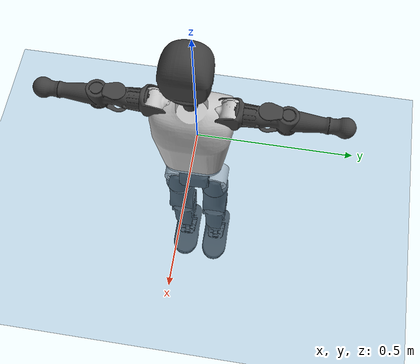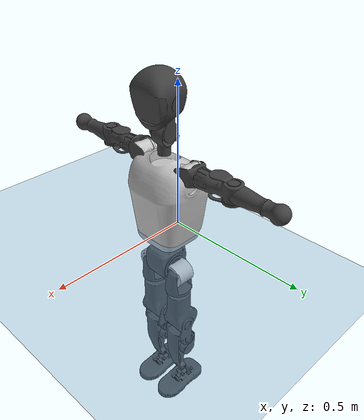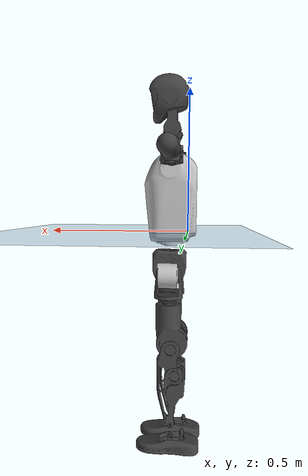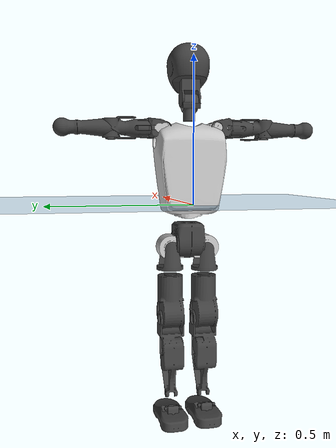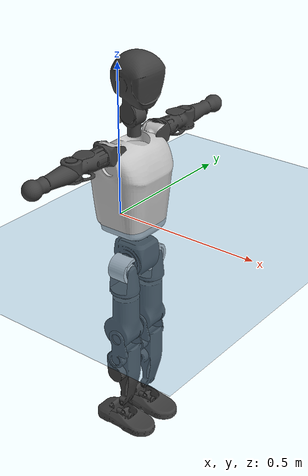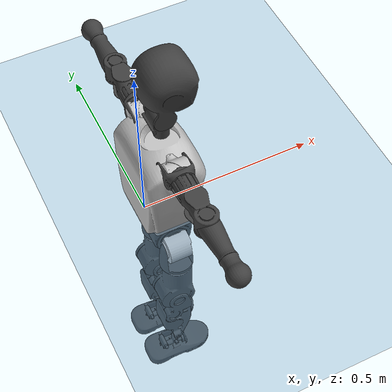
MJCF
<mujoco model="T1">
  <compiler angle="radian" assetdir="assets" balanceinertia="true" inertiafromgeom="false"/>

  <option timestep="0.005" density="1.2" viscosity="2e-05"/>

  <size nkey="1"/>

  <visual>
    <quality shadowsize="8192"/>
    <map shadowclip="0.5"/>
  </visual>

  <default>
    <default class="/">
      <joint armature="0.01" damping="0.01" frictionloss="0.1"/>
      <geom contype="0" conaffinity="0" group="1" solref="-1000 -80"/>
      <site size="0.01 0.005 0.005" group="5"/>
      <general forcelimited="true" biastype="affine" gainprm="25" biasprm="0 -25 -0.6"/>
      <default class="t1">
        <geom rgba="0.25 0.25 0.25 1"/>
        <default class="visual">
          <geom type="mesh" group="2"/>
        </default>
        <default class="collision">
          <geom group="3"/>
        </default>
        <default class="foot">
          <geom size="0.1115 0.05 0.015" type="box" condim="6" group="4" priority="1" solimp="0.015 1 0.015"/>
        </default>
        <default class="reward_collision_sphere">
          <geom group="5" rgba="1 0 0 1"/>
        </default>
      </default>
    </default>
  </default>

  <asset>
    <texture type="skybox" colorspace="auto" name="//unnamed_texture_0" builtin="gradient" rgb1="0.95 0.95 0.95" rgb2="0.95 0.95 0.95" width="100" height="600"/>
    <texture type="2d" colorspace="auto" name="texplane" builtin="checker" rgb1="0.345 0.575 0.748" rgb2="0.345 0.575 0.748" markrgb="1 1 1" width="512" height="512"/>
    <material name="MatPlane" class="/" texture="texplane" texuniform="true" texrepeat="2 2" specular="0.9"/>
    <mesh name="Trunk" class="/" file="Trunk.stl"/>
    <mesh name="H1" class="/" file="H1.stl"/>
    <mesh name="H2" class="/" file="H2.stl"/>
    <mesh name="AL1" class="/" file="AL1.stl"/>
    <mesh name="AL2" class="/" file="AL2.stl"/>
    <mesh name="AL3" class="/" file="AL3.stl"/>
    <mesh name="left_hand_link" class="/" file="left_hand_link.stl"/>
    <mesh name="AR1" class="/" file="AR1.stl"/>
    <mesh name="AR2" class="/" file="AR2.stl"/>
    <mesh name="AR3" class="/" file="AR3.stl"/>
    <mesh name="right_hand_link" class="/" file="right_hand_link.stl"/>
    <mesh name="Waist" class="/" file="Waist.stl"/>
    <mesh name="Hip_Pitch_Left" class="/" file="Hip_Pitch_Left.stl"/>
    <mesh name="Hip_Roll_Left" class="/" file="Hip_Roll_Left.stl"/>
    <mesh name="Hip_Yaw_Left" class="/" file="Hip_Yaw_Left.stl"/>
    <mesh name="Shank_Left" class="/" file="Shank_Left.stl"/>
    <mesh name="Ankle_Cross_Left" class="/" file="Ankle_Cross_Left.stl"/>
    <mesh name="left_foot_link" class="/" file="left_foot_link.stl"/>
    <mesh name="Hip_Pitch_Right" class="/" file="Hip_Pitch_Right.stl"/>
    <mesh name="Hip_Roll_Right" class="/" file="Hip_Roll_Right.stl"/>
    <mesh name="Hip_Yaw_Right" class="/" file="Hip_Yaw_Right.stl"/>
    <mesh name="Shank_Right" class="/" file="Shank_Right.stl"/>
    <mesh name="Ankle_Cross_Right" class="/" file="Ankle_Cross_Right.stl"/>
    <mesh name="right_foot_link" class="/" file="right_foot_link.stl"/>
  </asset>

  <worldbody>
    <geom name="floor" class="/" size="100 100 0.125" type="plane" group="0" material="MatPlane"/>
    <light name="toplight_shadow" class="/" pos="0 0 5" dir="0.0990148 0.0990148 -0.990148" type="directional" ambient="0.04 0.04 0.04" diffuse="0.55 0.55 0.55" specular="0.12 0.12 0.12"/>
    <light name="toplight_fill" class="/" pos="0 0 5" dir="0.0990148 0.0990148 -0.990148" type="directional" castshadow="false" ambient="0.04 0.04 0.04" diffuse="0.3 0.3 0.3" specular="0.08 0.08 0.08"/>
    <body name="trunk" childclass="t1" pos="-0.000241158 0.0020299 0.000599347" quat="1 -2.05798e-05 -6.98331e-05 2.70099e-05">
      <inertial pos="0.0514643 -0.00193665 0.124852" quat="0.999947 -0.00320557 -0.00600081 -0.00776606" mass="8.9586" diaginertia="0.0782325 0.00572588 0.122543"/>
      <joint name="//unnamed_joint_0" type="free" armature="0" damping="0" frictionloss="0"/>
      <geom name="//unnamed_geom_1" class="visual" rgba="0.76 0.76 0.76 1" mesh="Trunk"/>
      <geom name="//unnamed_geom_2" class="collision" size="0.068943 0.091924 0.137886" pos="0.0582799 0 0.142049" type="box"/>
      <geom name="//unnamed_geom_3" class="reward_collision_sphere" size="0.105713" pos="0.0582799 0 0.118374"/>
      <geom name="//unnamed_geom_4" class="reward_collision_sphere" size="0.0137886" pos="0.0582799 0.0512248 0"/>
      <geom name="//unnamed_geom_5" class="reward_collision_sphere" size="0.0137886" pos="0.0582799 -0.0512248 0"/>
      <geom name="//unnamed_geom_6" class="reward_collision_sphere" size="0.0137886" pos="0.0582799 0.064483 0.213074"/>
      <geom name="//unnamed_geom_7" class="reward_collision_sphere" size="0.0137886" pos="0.0582799 -0.064483 0.213074"/>
      <site name="imu" pos="0.000425229 -0.00293265 -0.0131391" size="0.0091924"/>
      <camera name="track" pos="0 -1.20529 0" quat="0.707107 0.707107 0 0" mode="trackcom"/>
      <camera name="ego_camera" pos="0.118502 0 0.497173" quat="-0.5 -0.5 0.5 0.5"/>
      <body name="H1" pos="0.0605252 -0.00238795 0.28507" quat="1 -3.01424e-05 -0.000189554 2.81364e-05">
        <inertial pos="0.000481585 -0.0032972 0.0705147" quat="0.760736 -0.0257667 0.00300037 0.648543" mass="0.337951" diaginertia="0.0001967 1.7717e-05 0.000326152"/>
        <joint name="AAHead_yaw" pos="0 0 0" axis="0.00711632 -0.0119458 0.999903" stiffness="0.000689188" range="-1.5172 1.52923" armature="0.00928506" damping="0.000398043" frictionloss="0.0845303"/>
        <geom name="//unnamed_geom_8" class="visual" mesh="H1"/>
        <body name="H2" pos="-0.000743281 -0.000355288 0.0765603" quat="0.999999 -0.00142577 3.7378e-05 0.000414522">
          <inertial pos="0.00450447 0.00175996 0.11735" quat="0.987676 0.113645 -0.0720397 -0.0799469" mass="0.491081" diaginertia="0.00175285 0.000148042 0.00413449"/>
          <joint name="Head_pitch" pos="0 0 0" axis="-0.00271857 -0.999994 -0.00215164" range="-1.17519 0.329601" armature="0.0088074" damping="0.0141231" frictionloss="0.0884748"/>
          <geom name="//unnamed_geom_9" class="visual" mesh="H2"/>
          <geom name="//unnamed_geom_10" class="collision" size="0.0735392" pos="0.00971331 0 0.130212"/>
          <geom name="//unnamed_geom_11" class="reward_collision_sphere" size="0.0827316" pos="0.0194266 0 0.118374"/>
        </body>
      </body>
      <body name="AL1" pos="0.0552732 0.062438 0.258046" quat="1 -2.25791e-05 0.000495868 0.000113264">
        <inertial pos="0.00179297 0.0250601 -0.000116601" quat="0.506613 0.498571 -0.50114 0.493588" mass="0.408906" diaginertia="0.00113464 0.000101175 0.000675429"/>
        <joint name="Left_Shoulder_Pitch" pos="0 0 0" axis="-0.0107834 0.999941 -0.0014899" range="-3.34 1.21001" armature="0.00858245" damping="0" frictionloss="0.0804682"/>
        <geom name="//unnamed_geom_12" class="visual" rgba="0.76 0.76 0.76 1" mesh="AL1"/>
        <body name="AL2" pos="-0.000703821 0.0269033 0.000916628" quat="1 -5.36633e-05 0.000532651 -7.58373e-05">
          <inertial pos="0.00126435 0.0249818 -0.000284774" quat="0.483417 0.517939 -0.492165 0.505787" mass="0.126566" diaginertia="0.000354331 2.75779e-05 0.000424714"/>
          <joint name="Left_Shoulder_Roll" pos="0 0 0" axis="-1 -0.000306627 0.000193872" range="-1.58096 1.69592" armature="0.00983543" damping="0.0100479" frictionloss="0.0864952"/>
          <geom name="//unnamed_geom_13" class="visual" mesh="AL2"/>
          <body name="AL3" pos="-0.00123462 0.0338627 -0.00173818" quat="1 -0.000251365 0.000214127 9.11817e-05">
            <inertial pos="-0.00163393 0.0534039 0.0020655" quat="0.709513 0.704572 0.00818194 -0.0101505" mass="0.763216" diaginertia="0.0104035 0.000945534 0.00139492"/>
            <joint name="Left_Elbow_Pitch" pos="0 0 0" axis="0.0137534 -0.999902 0.00244294" stiffness="0.00956432" range="-2.27077 2.2244" armature="0.00914349" damping="0.010026" frictionloss="0.0814968"/>
            <geom name="//unnamed_geom_14" class="visual" mesh="AL3"/>
            <geom name="//unnamed_geom_15" class="collision" size="0.0275772 0.068943" pos="0 0.0301322 0" quat="0.707105 0.707108 0 0" type="cylinder"/>
            <geom name="//unnamed_geom_16" class="reward_collision_sphere" size="0.0330926"/>
            <body name="left_hand_link" pos="-0.0015811 0.0912442 0.00114196" quat="0.999999 -0.000129897 0.00101167 -0.000101307">
              <inertial pos="-0.00210293 0.0669286 0.000270261" quat="0.706162 0.707954 0.00882589 0.00761305" mass="0.245801" diaginertia="0.00686899 0.000646795 0.0005"/>
              <joint name="Left_Elbow_Yaw" pos="0 0 0" axis="0.000922228 -0.000356486 1" stiffness="0.0121798" range="-2.48736 -0.0432888" armature="0.00914221" damping="0.0107221" frictionloss="0.102109"/>
              <geom name="//unnamed_geom_17" class="visual" mesh="left_hand_link"/>
              <geom name="//unnamed_geom_18" class="collision" size="0.0275772 0.0804335" pos="0 0.0783438 0" quat="0.707105 0.707108 0 0" type="cylinder"/>
              <geom name="//unnamed_geom_19" class="reward_collision_sphere" size="0.045962"/>
              <geom name="//unnamed_geom_20" class="reward_collision_sphere" size="0.0321734" pos="0 0.0662909 0"/>
              <geom name="//unnamed_geom_21" class="reward_collision_sphere" size="0.0321734" pos="0 0.129569 0"/>
            </body>
          </body>
        </body>
      </body>
      <body name="AR1" pos="0.0530682 -0.0635849 0.260179" quat="1 5.9806e-05 0.000452607 -1.98457e-05">
        <inertial pos="-0.00134184 -0.02676 -0.000854375" quat="0.513082 0.49856 -0.495676 0.492433" mass="0.422704" diaginertia="0.00119329 9.99545e-05 0.000686122"/>
        <joint name="Right_Shoulder_Pitch" pos="0 0 0" axis="0.010133 -0.999922 0.00733962" range="-1.22852 3.28169" armature="0.00827824" damping="0.0182337" frictionloss="0.0999807"/>
        <geom name="//unnamed_geom_22" class="visual" rgba="0.76 0.76 0.76 1" mesh="AR1"/>
        <body name="AR2" pos="-0.00270608 -0.0273778 0.00217838" quat="1 7.85278e-05 0.000183581 4.16952e-05">
          <inertial pos="0.00445697 -0.0233199 0.00197519" quat="0.522334 0.483585 -0.511819 0.480991" mass="0.119854" diaginertia="0.000343804 2.62243e-05 0.000403365"/>
          <joint name="Right_Shoulder_Roll" pos="0 0 0" axis="-1 9.09867e-05 -0.000268157" range="-1.75989 1.58687" armature="0.0083608" damping="0.0034649" frictionloss="0.092363"/>
          <geom name="//unnamed_geom_23" class="visual" mesh="AR2"/>
          <body name="AR3" pos="0.000396006 -0.0344726 -0.0025705" quat="0.999999 -0.000961204 0.000376707 -0.000238184">
            <inertial pos="0.000387258 -0.0510362 -0.000327519" quat="0.71534 0.698745 0.00294035 -0.00593917" mass="0.763112" diaginertia="0.0106306 0.000975183 0.0013931"/>
            <joint name="Right_Elbow_Pitch" pos="0 0 0" axis="-0.000208996 1 -0.000833311" stiffness="0.0182836" range="-2.27937 2.27542" armature="0.00903808" damping="0" frictionloss="0.0936165"/>
            <geom name="//unnamed_geom_24" class="visual" mesh="AR3"/>
            <geom name="//unnamed_geom_25" class="collision" size="0.0275772 0.068943" pos="0 -0.0301322 0" quat="0.707105 0.707108 0 0" type="cylinder"/>
            <geom name="//unnamed_geom_26" class="reward_collision_sphere" size="0.0330926"/>
            <body name="right_hand_link" pos="0.000762244 -0.0902852 -0.00257975" quat="1 -0.000143225 -1.69694e-06 3.09479e-05">
              <inertial pos="-0.00195718 -0.0669068 0.00281886" quat="0.702957 0.71121 -0.00357086 0.00449314" mass="0.256454" diaginertia="0.00703226 0.000621012 0.000484624"/>
              <joint name="Right_Elbow_Yaw" pos="0 0 0" axis="-0.00463929 0.00341246 0.999983" range="0.0530342 2.42932" armature="0.00845003" damping="0.00155002" frictionloss="0.0889593"/>
              <geom name="//unnamed_geom_27" class="visual" mesh="right_hand_link"/>
              <geom name="//unnamed_geom_28" class="collision" size="0.0275772 0.0804335" pos="0 -0.0783438 0" quat="0.707105 0.707108 0 0" type="cylinder"/>
              <geom name="//unnamed_geom_29" class="reward_collision_sphere" size="0.045962"/>
              <geom name="//unnamed_geom_30" class="reward_collision_sphere" size="0.0321734" pos="0 -0.0662909 0"/>
              <geom name="//unnamed_geom_31" class="reward_collision_sphere" size="0.0321734" pos="0 -0.129569 0"/>
            </body>
          </body>
        </body>
      </body>
      <body name="Waist" pos="0.0642801 0.000639986 -0.134178" quat="1 0.000257247 -0.000229213 -0.000296424">
        <inertial pos="0.00365131 -0.00082757 0.0105966" quat="0.983637 0.000205637 -0.18013 0.00335187" mass="2.09693" diaginertia="0.00474361 0.000437508 0.011055"/>
        <joint name="Waist" pos="0 0 0" axis="0.00703978 0.00462488 0.999965" range="-1.55168 1.58154" armature="0.0105013" damping="0" frictionloss="0.099225"/>
        <geom name="//unnamed_geom_32" class="visual" mesh="Waist"/>
        <body name="Hip_Pitch_Left" pos="0.00374184 0.0652507 -7.76963e-05" quat="1 -0.000116877 8.67178e-05 5.94484e-05">
          <inertial pos="0.000614615 -0.00760145 -0.0216502" quat="0.973084 0.229914 0.0148424 -0.00521531" mass="0.793578" diaginertia="0.00147207 0.000109395 0.00274096"/>
          <joint name="Left_Hip_Pitch" pos="0 0 0" axis="-0.000518431 0.999854 -0.0170716" stiffness="0.0105086" range="-1.83587 1.62408" armature="0.00796701" damping="0.0128316" frictionloss="0.10419"/>
          <geom name="//unnamed_geom_33" class="visual" rgba="0.76 0.76 0.76 1" mesh="Hip_Pitch_Left"/>
          <body name="Hip_Roll_Left" pos="-0.000957345 -0.000817655 -0.0221831" quat="0.999999 0.000258738 0.00136611 0.000449298">
            <inertial pos="0.00221633 -0.00028965 -0.0610608" quat="0.698269 -0.00774621 -0.00844358 0.715743" mass="0.306738" diaginertia="0.00154989 0.000126277 0.00118603"/>
            <joint name="Left_Hip_Roll" pos="0 0 0" axis="-0.999893 -0.0004714 0.0146115" range="-1.58424 0.177451" armature="0.00879458" damping="0.0202125" frictionloss="0.0898385"/>
            <geom name="//unnamed_geom_34" class="visual" mesh="Hip_Roll_Left"/>
            <geom name="//unnamed_geom_35" class="reward_collision_sphere" size="0.0505582"/>
            <body name="Hip_Yaw_Left" pos="-0.00337834 -0.00014857 -0.0976265" quat="1 -0.00040841 -0.000555976 -0.000172143">
              <inertial pos="-0.00466908 -0.0025755 -0.107874" quat="0.691176 -0.0364749 -0.0356047 0.720887" mass="1.63172" diaginertia="0.0212522 0.00195013 0.00588114"/>
              <joint name="Left_Hip_Yaw" pos="0 0 0" axis="-0.00795367 -0.00729351 -0.999942" range="-0.960421 1.03949" armature="0.00979474" damping="0" frictionloss="0.102859"/>
              <geom name="//unnamed_geom_36" class="visual" mesh="Hip_Yaw_Left"/>
              <geom name="//unnamed_geom_37" class="collision" size="0.045962 0.0735392" type="cylinder"/>
              <body name="Shank_Left" pos="-0.0100497 -0.00102194 -0.156968" quat="1 2.90114e-05 -1.53395e-05 4.41915e-05">
                <inertial pos="-0.00585457 0.000641799 -0.146734" quat="0.997908 -0.0025138 -0.0299506 0.057246" mass="1.34209" diaginertia="0.0298617 0.00277926 0.00456827"/>
                <joint name="Left_Knee_Pitch" pos="0 0 0" axis="0.000453396 1 -0.000601025" stiffness="0.00654861" range="0.0393455 2.39139" armature="0.00865445" damping="0.0158599" frictionloss="0.0965854"/>
                <geom name="//unnamed_geom_38" class="visual" mesh="Shank_Left"/>
                <geom name="//unnamed_geom_39" class="collision" size="0.045962 0.068943" pos="0 0 -0.142049" type="cylinder"/>
                <geom name="//unnamed_geom_40" class="reward_collision_sphere" size="0.0597506"/>
                <body name="Ankle_Cross_Left" pos="1.81897e-05 0.000329506 -0.333457" quat="0.999999 -0.00107033 -2.2005e-05 0.000365302">
                  <inertial pos="-0.0026456 0.00259422 -0.011642" quat="0.440043 0.551338 0.553902 0.442245" mass="0.0541365" diaginertia="2.49643e-05 1.90743e-06 2.54689e-05"/>
                  <joint name="Left_Ankle_Pitch" pos="0 0 0" axis="-0.00814943 0.999907 0.0109492" stiffness="0.00469352" range="-0.924616 0.403289" armature="0.00920758" damping="0.0192089" frictionloss="0.0873484"/>
                  <geom name="//unnamed_geom_41" class="visual" mesh="Ankle_Cross_Left"/>
                  <body name="left_foot_link" pos="0.000139927 0.00273763 -0.0161817" quat="1 -0.000459207 0.000562705 0.000644961">
                    <inertial pos="0.00237419 0.000263544 -0.00996523" quat="-0.00755215 0.621633 0.00138505 0.783271" mass="0.55828" diaginertia="0.00231681 0.000200868 0.00540811"/>
                    <joint name="Left_Ankle_Roll" pos="0 0 0" axis="-0.999956 -0.00916826 0.00195119" stiffness="0.00946876" range="-0.496239 0.408306" armature="0.00814308" damping="0.0100184" frictionloss="0.104247"/>
                    <geom name="//unnamed_geom_42" class="visual" mesh="left_foot_link"/>
                    <geom name="left_foot" class="foot" size="0.0961306 0.0517471 0.0126931" pos="0.00971331 0 -0.0177562"/>
                    <geom name="//unnamed_geom_44" class="reward_collision_sphere" size="0.0478005" pos="0.00971331 0 -0.0177562"/>
                    <geom name="//unnamed_geom_45" class="reward_collision_sphere" size="0.0275772" pos="0.0922764 -0.0138608 -0.0177562"/>
                    <geom name="//unnamed_geom_46" class="reward_collision_sphere" size="0.0275772" pos="-0.0679932 -0.0138608 -0.0177562"/>
                    <site name="left_foot" class="foot" pos="0.00971331 0 -0.0177562" size="0.0091924"/>
                  </body>
                </body>
              </body>
            </body>
          </body>
        </body>
        <body name="Hip_Pitch_Right" pos="-0.000176539 -0.0608022 -9.49455e-05" quat="1 -0.000269093 -0.000304847 0.000829185">
          <inertial pos="0.00118305 0.00618223 -0.0215612" quat="0.97136 -0.237307 0.0120492 -0.000562148" mass="0.744082" diaginertia="0.00153133 0.000113096 0.00281828"/>
          <joint name="Right_Hip_Pitch" pos="0 0 0" axis="0.00835027 -0.999874 -0.0135348" range="-1.52376 1.75892" armature="0.0076484" damping="0.016622" frictionloss="0.0811893"/>
          <geom name="//unnamed_geom_47" class="visual" rgba="0.76 0.76 0.76 1" mesh="Hip_Pitch_Right"/>
          <body name="Hip_Roll_Right" pos="0.00108647 -0.00146674 -0.0266457" quat="1 -0.0002377 0.000827129 -0.000103883">
            <inertial pos="0.000790481 0.00155715 -0.0643293" quat="0.708494 -0.00966249 -0.00780507 0.705608" mass="0.318365" diaginertia="0.0015928 0.000124521 0.00124459"/>
            <joint name="Right_Hip_Roll" pos="0 0 0" axis="-0.999843 0.0108902 -0.013957" range="-0.212825 1.56571" armature="0.00951743" damping="0.0202087" frictionloss="0.0896542"/>
            <geom name="//unnamed_geom_48" class="visual" mesh="Hip_Roll_Right"/>
            <geom name="//unnamed_geom_49" class="reward_collision_sphere" size="0.0505582"/>
            <body name="Hip_Yaw_Right" pos="0.000389253 0.00267134 -0.0973045" quat="1 0.000133751 -0.000219166 -0.000177307">
              <inertial pos="-0.00684458 0.00269929 -0.103176" quat="0.721053 -0.0404656 -0.0312649 0.690991" mass="1.79405" diaginertia="0.023326 0.00210445 0.00606202"/>
              <joint name="Right_Hip_Yaw" pos="0 0 0" axis="0.00114363 0.01064 -0.999943" range="-1.0458 1.0026" armature="0.00823225" damping="0.021921" frictionloss="0.0906852"/>
              <geom name="//unnamed_geom_50" class="visual" mesh="Hip_Yaw_Right"/>
              <geom name="//unnamed_geom_51" class="collision" size="0.045962 0.0735392" type="cylinder"/>
              <body name="Shank_Right" pos="-0.0124549 0.00261776 -0.157934" quat="1 1.05994e-05 5.63732e-06 -6.26821e-06">
                <inertial pos="-0.00480772 -0.00027222 -0.147818" quat="0.999619 -0.00123871 -0.0162496 -0.0222873" mass="1.40124" diaginertia="0.0316184 0.00267899 0.00456941"/>
                <joint name="Right_Knee_Pitch" pos="0 0 0" axis="0.00867515 -0.999894 0.0117257" stiffness="0.00556011" range="-2.29481 0.0471578" armature="0.00910516" damping="0.0186312" frictionloss="0.0887111"/>
                <geom name="//unnamed_geom_52" class="visual" mesh="Shank_Right"/>
                <geom name="//unnamed_geom_53" class="collision" size="0.045962 0.068943" pos="0 0 -0.142049" type="cylinder"/>
                <geom name="//unnamed_geom_54" class="reward_collision_sphere" size="0.0597506"/>
                <body name="Ankle_Cross_Right" pos="-0.00293565 0.000270264 -0.329832" quat="1 -1.9895e-05 5.32408e-05 1.92748e-05">
                  <inertial pos="-0.00611549 -0.000993739 -0.00792064" quat="0.438725 0.558269 0.549793 0.439982" mass="0.0578059" diaginertia="2.61752e-05 2.06819e-06 2.72452e-05"/>
                  <joint name="Right_Ankle_Pitch" pos="0 0 0" axis="-0.000710991 -0.999999 -0.000955473" stiffness="0.00113655" range="-0.327977 0.92162" armature="0.00914168" damping="0.00260316" frictionloss="0.0908444"/>
                  <geom name="//unnamed_geom_55" class="visual" mesh="Ankle_Cross_Right"/>
                  <body name="right_foot_link" pos="-0.000558327 -0.000281721 -0.012577" quat="0.999999 -1.99632e-05 0.00129163 6.97883e-05">
                    <inertial pos="0.00280653 -0.00104993 -0.0108407" quat="0.00247527 0.622504 0.00397354 0.782602" mass="0.532844" diaginertia="0.00226107 0.000183639 0.0048575"/>
                    <joint name="Right_Ankle_Roll" pos="0 0 0" axis="-1 -4.68575e-05 -0.00095224" stiffness="0.00295011" range="-0.482577 0.445886" armature="0.0102934" damping="0" frictionloss="0.0889138"/>
                    <geom name="//unnamed_geom_56" class="visual" mesh="right_foot_link"/>
                    <geom name="right_foot" class="foot" size="0.100469 0.046588 0.0144179" pos="0.00971331 0 -0.0177562"/>
                    <geom name="//unnamed_geom_58" class="reward_collision_sphere" size="0.0367696"/>
                    <geom name="//unnamed_geom_59" class="reward_collision_sphere" size="0.0275772" pos="0.00971331 0 -0.0177562"/>
                    <geom name="//unnamed_geom_60" class="reward_collision_sphere" size="0.0275772" pos="0.0922764 0.0138608 -0.0177562"/>
                    <geom name="//unnamed_geom_61" class="reward_collision_sphere" size="0.0275772" pos="-0.0679932 0.0138608 -0.0177562"/>
                    <site name="right_foot" class="foot" pos="0.00971331 0 -0.0177562" size="0.0091924"/>
                  </body>
                </body>
              </body>
            </body>
          </body>
        </body>
      </body>
    </body>
  </worldbody>

  <contact>
    <pair class="/" geom1="floor" geom2="left_foot" name="//unnamed_contact_0"/>
    <pair class="/" geom1="floor" geom2="right_foot" name="//unnamed_contact_1"/>
  </contact>

  <actuator>
    <general name="AAHead_yaw" class="/" joint="AAHead_yaw" forcerange="-6.72769 6.72769" gainprm="23.8087" biasprm="0 -23.8087 -0.518271"/>
    <general name="Head_pitch" class="/" joint="Head_pitch" forcerange="-6.6485 6.6485" gainprm="23.8087" biasprm="0 -23.8087 -0.518271"/>
    <general name="Left_Shoulder_Pitch" class="/" joint="Left_Shoulder_Pitch" forcerange="-14.8028 14.8028" gainprm="23.8087" biasprm="0 -23.8087 -0.518271"/>
    <general name="Left_Shoulder_Roll" class="/" joint="Left_Shoulder_Roll" forcerange="-17.0969 17.0969" gainprm="23.8087" biasprm="0 -23.8087 -0.518271"/>
    <general name="Left_Elbow_Pitch" class="/" joint="Left_Elbow_Pitch" forcerange="-15.8066 15.8066" gainprm="23.8087" biasprm="0 -23.8087 -0.518271"/>
    <general name="Left_Elbow_Yaw" class="/" joint="Left_Elbow_Yaw" forcerange="-15.6984 15.6984" gainprm="23.8087" biasprm="0 -23.8087 -0.518271"/>
    <general name="Right_Shoulder_Pitch" class="/" joint="Right_Shoulder_Pitch" forcerange="-17.8578 17.8578" gainprm="23.8087" biasprm="0 -23.8087 -0.518271"/>
    <general name="Right_Shoulder_Roll" class="/" joint="Right_Shoulder_Roll" forcerange="-17.1088 17.1088" gainprm="23.8087" biasprm="0 -23.8087 -0.518271"/>
    <general name="Right_Elbow_Pitch" class="/" joint="Right_Elbow_Pitch" forcerange="-15.633 15.633" gainprm="23.8087" biasprm="0 -23.8087 -0.518271"/>
    <general name="Right_Elbow_Yaw" class="/" joint="Right_Elbow_Yaw" forcerange="-18.1771 18.1771" gainprm="23.8087" biasprm="0 -23.8087 -0.518271"/>
    <general name="Waist" class="/" joint="Waist" forcerange="-25.6358 25.6358" gainprm="23.8087" biasprm="0 -23.8087 -0.518271"/>
    <general name="Left_Hip_Pitch" class="/" joint="Left_Hip_Pitch" forcerange="-37.2174 37.2174" gainprm="23.8087" biasprm="0 -23.8087 -0.518271"/>
    <general name="Left_Hip_Roll" class="/" joint="Left_Hip_Roll" forcerange="-26.7072 26.7072" gainprm="23.8087" biasprm="0 -23.8087 -0.518271"/>
    <general name="Left_Hip_Yaw" class="/" joint="Left_Hip_Yaw" forcerange="-30.2963 30.2963" gainprm="23.8087" biasprm="0 -23.8087 -0.518271"/>
    <general name="Left_Knee_Pitch" class="/" joint="Left_Knee_Pitch" forcerange="-56.0891 56.0891" gainprm="23.8087" biasprm="0 -23.8087 -0.518271"/>
    <general name="Left_Ankle_Pitch" class="/" joint="Left_Ankle_Pitch" forcerange="-20.8031 20.8031" gainprm="23.8087" biasprm="0 -23.8087 -0.518271"/>
    <general name="Left_Ankle_Roll" class="/" joint="Left_Ankle_Roll" forcerange="-13.7379 13.7379" gainprm="23.8087" biasprm="0 -23.8087 -0.518271"/>
    <general name="Right_Hip_Pitch" class="/" joint="Right_Hip_Pitch" forcerange="-42.5632 42.5632" gainprm="23.8087" biasprm="0 -23.8087 -0.518271"/>
    <general name="Right_Hip_Roll" class="/" joint="Right_Hip_Roll" forcerange="-25.5028 25.5028" gainprm="23.8087" biasprm="0 -23.8087 -0.518271"/>
    <general name="Right_Hip_Yaw" class="/" joint="Right_Hip_Yaw" forcerange="-25.52 25.52" gainprm="23.8087" biasprm="0 -23.8087 -0.518271"/>
    <general name="Right_Knee_Pitch" class="/" joint="Right_Knee_Pitch" forcerange="-54.5526 54.5526" gainprm="23.8087" biasprm="0 -23.8087 -0.518271"/>
    <general name="Right_Ankle_Pitch" class="/" joint="Right_Ankle_Pitch" forcerange="-19.6335 19.6335" gainprm="23.8087" biasprm="0 -23.8087 -0.518271"/>
    <general name="Right_Ankle_Roll" class="/" joint="Right_Ankle_Roll" forcerange="-14.5849 14.5849" gainprm="23.8087" biasprm="0 -23.8087 -0.518271"/>
  </actuator>

  <sensor>
    <gyro site="imu" name="imu_angular_velocity"/>
    <velocimeter site="imu" name="imu_linear_velocity"/>
    <framelinvel objtype="site" objname="left_foot" name="left_foot_global_linear_velocity"/>
    <framelinvel objtype="site" objname="right_foot" name="right_foot_global_linear_velocity"/>
  </sensor>

  <keyframe>
    <key name="home" qpos="0 0 0.6385 1 0 0 0 0 0 0 1.4 0 -0.4 0 -1.4 0 0.4 0 -0.4 0 0 0.8 -0.4 0 0.4 0 0 -0.8 0.4 0"/>
  </keyframe>
</mujoco>
